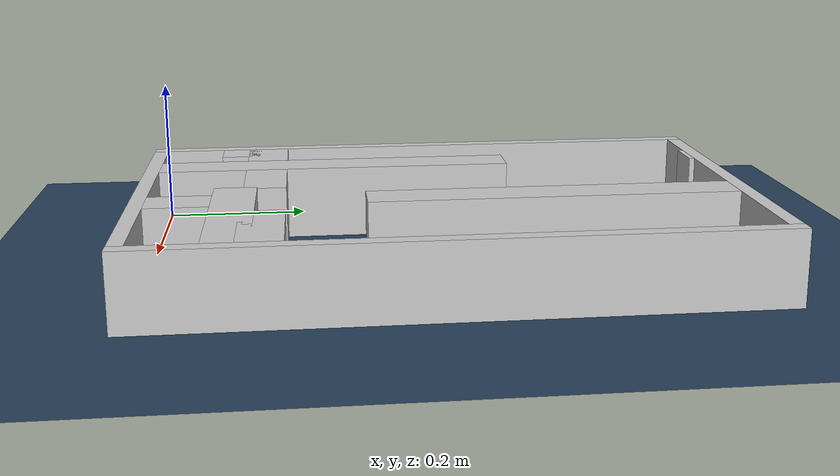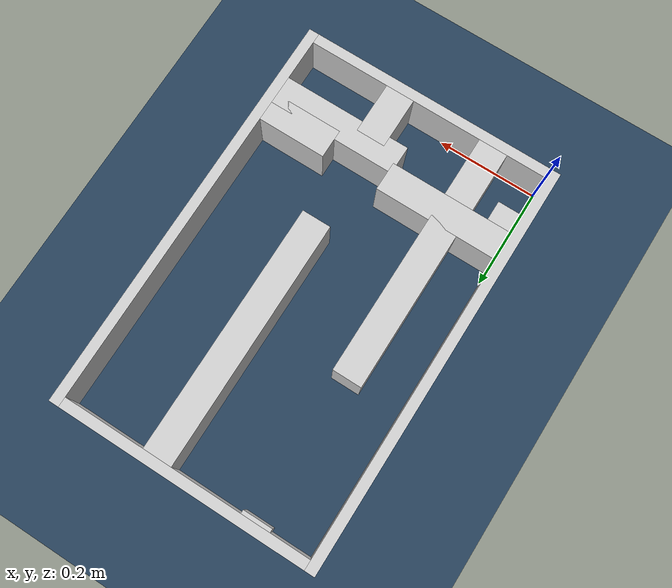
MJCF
<?xml version="1.0" ?>
<mujoco model="generated_real_template">
  <compiler angle="degree"/>
  <option timestep="0.002" integrator="implicitfast" iterations="100" cone="elliptic"/>
  <default>
    <geom density="1"/>
  </default>
  <asset>
    <texture builtin="gradient" height="3072" rgb1="0.3 0.5 0.7" rgb2="0 0 0" type="skybox" width="512"/>
    <texture builtin="checker" height="300" mark="edge" markrgb="0.8 0.8 0.8" name="groundplane" rgb1="0.2 0.3 0.4" rgb2="0.1 0.2 0.3" type="2d" width="300"/>
    <material name="groundplane" reflectance="0.2" texrepeat="5 5" texture="groundplane" texuniform="true"/>
  </asset>
  <worldbody>
    <light dir="0 0 -1" directional="true" pos="0 0 1.5"/>
    <geom name="floor" type="plane" condim="4" friction="0.5 0.005 0.001" material="groundplane" size="0 0 0.05"/>
    <body name="walls">
      <geom name="wall_boundary_left" type="box" condim="4" friction="1.0 0.005 0.0001" rgba="0.8 0.8 0.8 1" pos="-0.010000 0.387500 0.050000" euler="0 0 0.000000" size="0.010000 0.407500 0.050000"/>
      <geom name="wall_boundary_right" type="box" condim="4" friction="1.0 0.005 0.0001" rgba="0.8 0.8 0.8 1" pos="0.500000 0.387500 0.050000" euler="0 0 0.000000" size="0.010000 0.407500 0.050000"/>
      <geom name="wall_boundary_bottom" type="box" condim="4" friction="1.0 0.005 0.0001" rgba="0.8 0.8 0.8 1" pos="0.245000 -0.010000 0.050000" euler="0 0 0.000000" size="0.245000 0.010000 0.050000"/>
      <geom name="wall_boundary_top" type="box" condim="4" friction="1.0 0.005 0.0001" rgba="0.8 0.8 0.8 1" pos="0.245000 0.785000 0.050000" euler="0 0 0.000000" size="0.245000 0.010000 0.050000"/>
      <geom name="wall_inner_1_1" type="box" condim="4" friction="1.0 0.005 0.0001" rgba="0.8 0.8 0.8 1" pos="0.024145 0.111569 0.050000" euler="0 0 0.000000" size="0.024145 0.028500 0.050000"/>
      <geom name="wall_inner_1_2" type="box" condim="4" friction="1.0 0.005 0.0001" rgba="0.8 0.8 0.8 1" pos="0.362897 0.111569 0.050000" euler="0 0 0.000000" size="0.127103 0.028500 0.050000"/>
      <geom name="wall_inner_2_1" type="box" condim="4" friction="1.0 0.005 0.0001" rgba="0.8 0.8 0.8 1" pos="0.121381 0.150311 0.050000" euler="0 0 0.000000" size="0.121381 0.028500 0.050000"/>
      <geom name="wall_inner_2_2" type="box" condim="4" friction="1.0 0.005 0.0001" rgba="0.8 0.8 0.8 1" pos="0.422823 0.150311 0.050000" euler="0 0 0.000000" size="0.067177 0.028500 0.050000"/>
      <geom name="wall_inner_3_1" type="box" condim="4" friction="1.0 0.005 0.0001" rgba="0.8 0.8 0.8 1" pos="0.107209 0.247041 0.050000" euler="0 0 90.000000" size="0.247041 0.028500 0.050000"/>
      <geom name="wall_inner_3_2" type="box" condim="4" friction="1.0 0.005 0.0001" rgba="0.8 0.8 0.8 1" pos="0.107209 0.771276 0.050000" euler="0 0 90.000000" size="0.003724 0.028500 0.050000"/>
      <geom name="wall_inner_4_1" type="box" condim="4" friction="1.0 0.005 0.0001" rgba="0.8 0.8 0.8 1" pos="0.302343 0.051440 0.050000" euler="0 0 90.000000" size="0.051440 0.028500 0.050000"/>
      <geom name="wall_inner_4_2" type="box" condim="4" friction="1.0 0.005 0.0001" rgba="0.8 0.8 0.8 1" pos="0.302343 0.528773 0.050000" euler="0 0 90.000000" size="0.246227 0.028500 0.050000"/>
    </body>
  </worldbody>
</mujoco>
